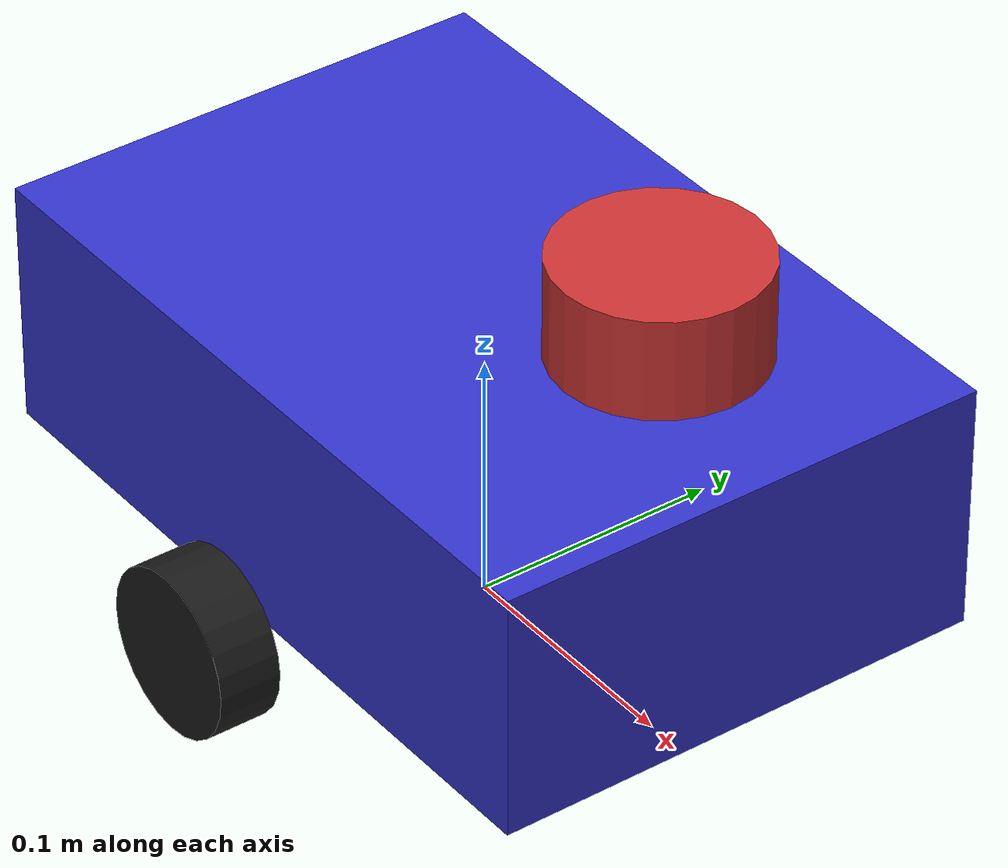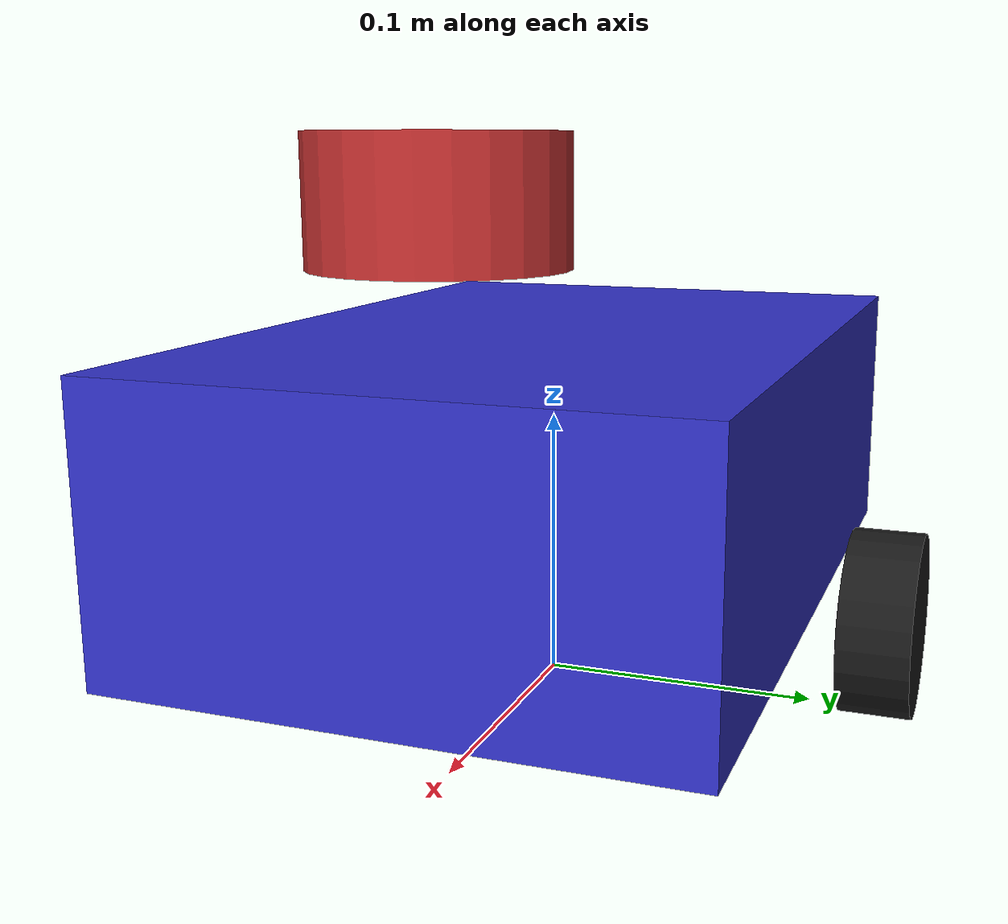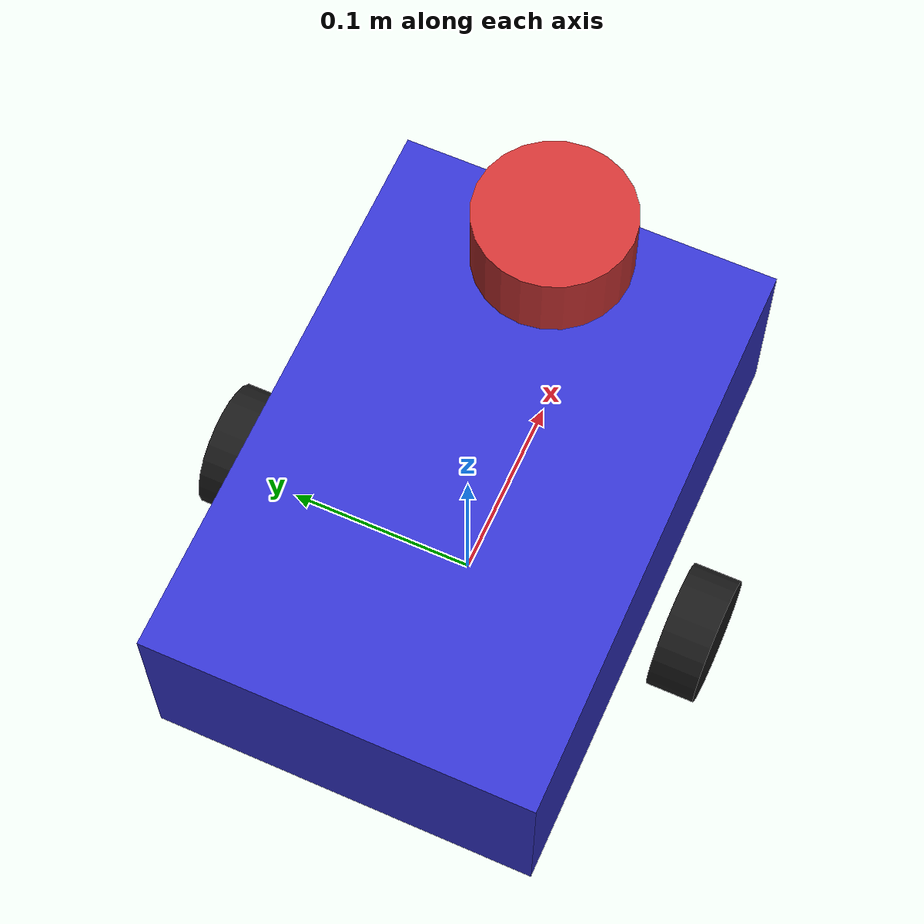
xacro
<?xml version="1.0"?>
<robot name="lidarbot" xmlns:xacro="http://www.ros.org/wiki/xacro">

  <!-- ПАРАМЕТРЫ РОБОТА (легко менять размеры)    -->
  <xacro:property name="wheel_radius" value="0.033"/>
  <xacro:property name="wheel_width" value="0.025"/>
  <xacro:property name="wheel_separation" value="0.25"/>
  <xacro:property name="base_length" value="0.30"/>
  <xacro:property name="base_width" value="0.20"/>
  <xacro:property name="base_height" value="0.10"/>

  <!-- БАЗОВЫЕ ЗВЕНЬЯ И СОЕДИНЕНИЯ                -->

  <!-- Точка отсчета на земле -->
  <link name="base_footprint"/>

  <joint name="base_joint" type="fixed">
    <parent link="base_footprint"/>
    <child link="base_link"/>
    <origin xyz="0 0 ${wheel_radius}" rpy="0 0 0"/>
  </joint>

  <!-- Основной корпус -->
  <link name="base_link">
    <visual>
      <geometry>
        <box size="${base_length} ${base_width} ${base_height}"/>
      </geometry>
      <origin xyz="0 0 ${base_height/2}" rpy="0 0 0"/>
      <material name="blue">
        <color rgba="0.2 0.2 0.8 1.0"/>
      </material>
    </visual>
    <collision>
      <geometry>
        <box size="${base_length} ${base_width} ${base_height}"/>
      </geometry>
      <origin xyz="0 0 ${base_height/2}" rpy="0 0 0"/>
    </collision>
    <inertial>
      <mass value="2.0"/>
      <inertia ixx="0.01" ixy="0.0" ixz="0.0" iyy="0.01" iyz="0.0" izz="0.01"/>
    </inertial>
  </link>

  <!-- Макрос для создания колес -->
  <xacro:macro name="wheel" params="prefix y_offset">
    <joint name="${prefix}_wheel_joint" type="continuous">
      <parent link="base_link"/>
      <child link="${prefix}_wheel_link"/>
      <origin xyz="0 ${y_offset} 0" rpy="${-pi/2} 0 0"/>
      <axis xyz="0 0 1"/>
    </joint>

    <link name="${prefix}_wheel_link">
      <visual>
        <geometry>
          <cylinder radius="${wheel_radius}" length="${wheel_width}"/>
        </geometry>
        <material name="black">
          <color rgba="0.1 0.1 0.1 1.0"/>
        </material>
      </visual>
      <collision>
        <geometry>
          <cylinder radius="${wheel_radius}" length="${wheel_width}"/>
        </geometry>
      </collision>
      <inertial>
        <mass value="0.2"/>
        <inertia ixx="0.0001" ixy="0.0" ixz="0.0" iyy="0.0001" iyz="0.0" izz="0.0001"/>
      </inertial>
    </link>
  </xacro:macro>

  <!-- Левое и правое колеса -->
  <xacro:wheel prefix="left" y_offset="${wheel_separation/2}"/>
  <xacro:wheel prefix="right" y_offset="${-wheel_separation/2}"/>

  <!-- Лидар (RPLIDAR) -->
  <joint name="laser_joint" type="fixed">
    <parent link="base_link"/>
    <child link="laser"/>
    <origin xyz="0.1 0 ${base_height + 0.05}" rpy="0 0 0"/>
  </joint>

  <link name="laser">
    <visual>
      <geometry>
        <cylinder radius="0.04" length="0.04"/>
      </geometry>
      <material name="red">
        <color rgba="0.8 0.2 0.2 1.0"/>
      </material>
    </visual>
    <collision>
      <geometry>
        <cylinder radius="0.04" length="0.04"/>
      </geometry>
    </collision>
    <inertial>
      <mass value="0.1"/>
      <inertia ixx="0.0001" ixy="0.0" ixz="0.0" iyy="0.0001" iyz="0.0" izz="0.0001"/>
    </inertial>
  </link>

  <!-- IMU датчик -->
  <joint name="imu_joint" type="fixed">
    <parent link="base_link"/>
    <child link="imu_link"/>
    <origin xyz="0 0 ${base_height/2}" rpy="0 0 0"/>
  </joint>

  <link name="imu_link">
    <visual>
      <geometry>
        <box size="0.02 0.02 0.02"/>
      </geometry>
      <material name="green">
        <color rgba="0.2 0.8 0.2 1.0"/>
      </material>
    </visual>
  </link>

</robot>
